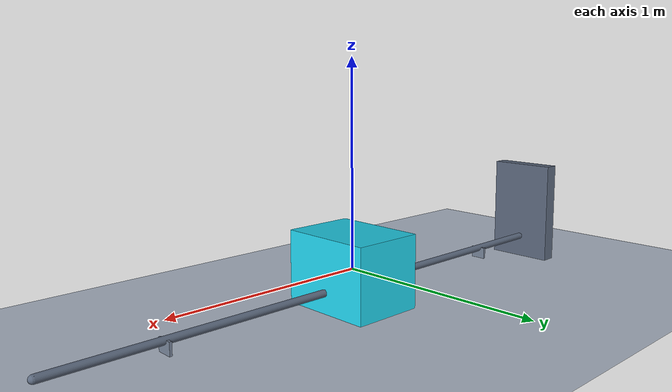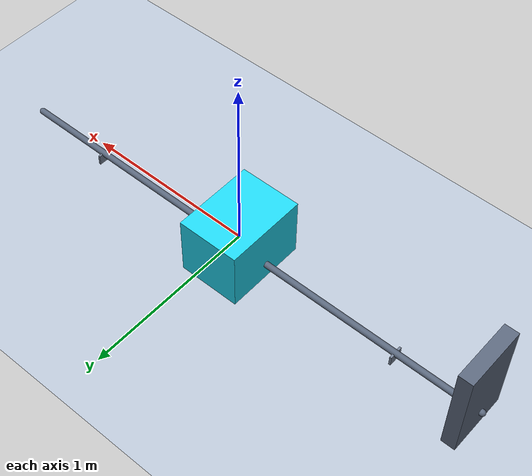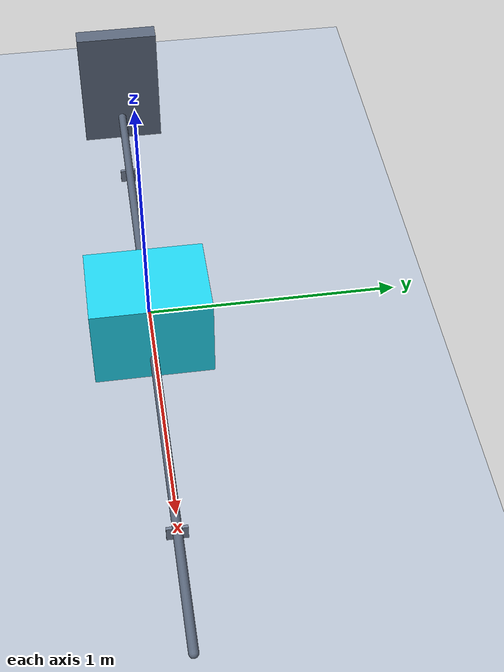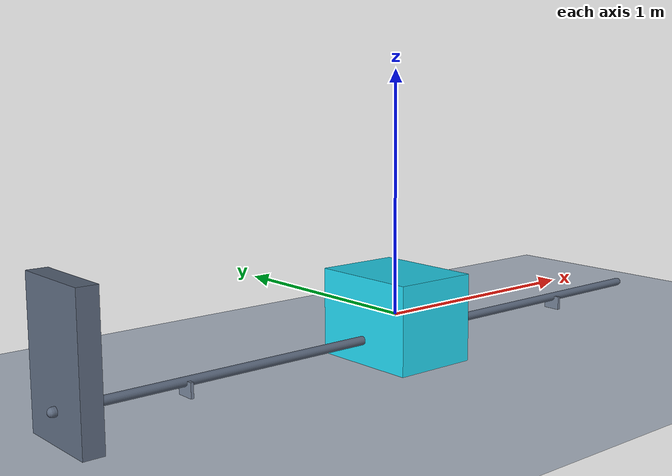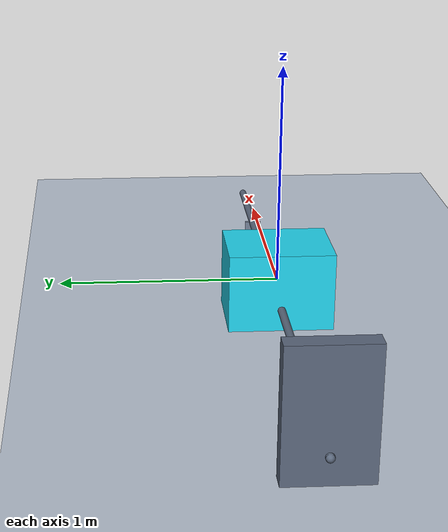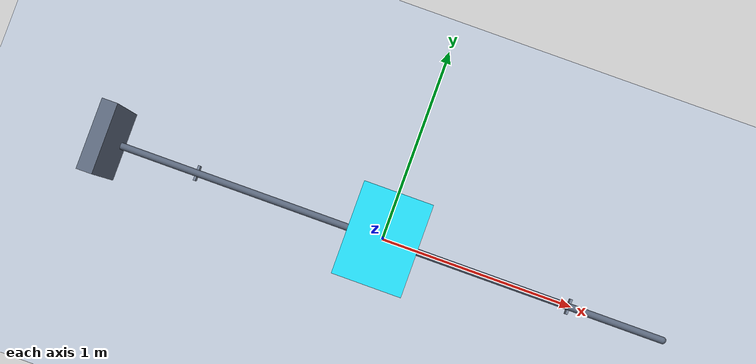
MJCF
<mujoco model="lab01_mass_spring_damper">
  <compiler angle="radian"/>
  <option timestep="0.002" gravity="0 0 0"/>
  <visual><global offwidth="1280" offheight="720"/></visual>

  <worldbody>
    <light name="key" pos="0 -2 3" dir="0 1 -1" diffuse="0.9 0.9 0.9"/>
    <geom name="floor" type="plane" size="2.2 1.2 0.05" pos="0 0 -0.2" rgba="0.72 0.76 0.82 1"/>
    <geom name="rail" type="capsule" fromto="-1.5 0 -0.08 1.5 0 -0.08" size="0.018" rgba="0.35 0.4 0.48 1" contype="0" conaffinity="0"/>
    <geom name="spring_anchor" type="box" pos="-1.45 0 0.08" size="0.04 0.18 0.28" rgba="0.35 0.4 0.48 1"/>
    <geom name="equilibrium_tick" type="box" pos="0 0 -0.105" size="0.012 0.07 0.055" rgba="0.55 0.63 0.72 1" contype="0" conaffinity="0"/>
    <geom name="tick_minus_1" type="box" pos="-1 0 -0.105" size="0.006 0.04 0.03" rgba="0.45 0.5 0.58 1" contype="0" conaffinity="0"/>
    <geom name="tick_plus_1" type="box" pos="1 0 -0.105" size="0.006 0.04 0.03" rgba="0.45 0.5 0.58 1" contype="0" conaffinity="0"/>
    <body name="block" pos="0 0 0">
      <joint name="slider" type="slide" axis="1 0 0" damping="2" stiffness="50" springref="0" limited="true" range="-2 2"/>
      <geom name="block_geom" type="box" size="0.18 0.24 0.18" mass="1" rgba="0.13 0.83 0.93 1" contype="0" conaffinity="0"/>
      <site name="block_center" pos="0 0 0" size="0.018" rgba="0.13 0.83 0.93 1"/>
    </body>
  </worldbody>

  <actuator>
    <motor name="force_x" joint="slider" gear="1" ctrllimited="true" ctrlrange="-500 500"/>
  </actuator>
</mujoco>
